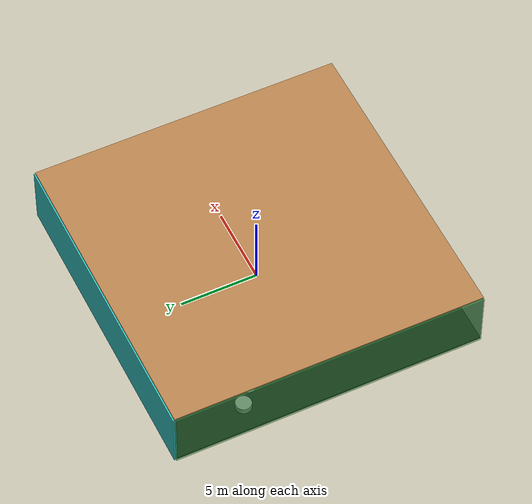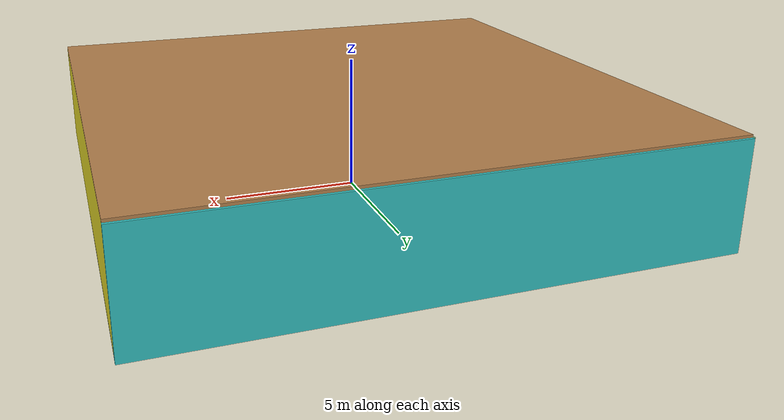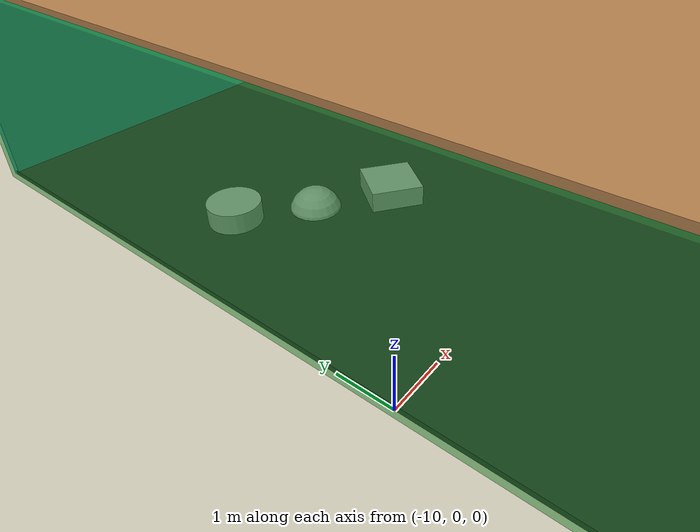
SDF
<sdf version="1.4">
 <world name="default">
  <physics type="ode">
   <max_step_size>0.001</max_step_size>
   <real_time_factor>1</real_time_factor>
   <real_time_update_rate>1000</real_time_update_rate>
   <gravity>0 0 -9.8</gravity>
  </physics>
  <scene><ambient>0.4 0.4 0.4 1</ambient><background>0.7 0.7 0.7 1</background><shadows>1</shadows></scene>
  <model name="Surrounding">
   <static>1</static>
   <link name="Ceiling">
    <collision name="Ceiling_Collision"><geometry><box><size>20 20 0.1</size></box></geometry></collision>
    <visual name="Ceiling_Visual">
     <geometry><box><size>20 20 0.1</size></box></geometry>
     <material>
      <script><uri>file://media/materials/scripts/gazebo.material</uri><name>Gazebo/Wood</name></script>
     </material>
    </visual>
    <pose>0 0 4.05 0 0 0</pose>
   </link>
   <link name="Wall_South">
    <collision name="Wall_South_Collision">
     <geometry><box><size>20 0 4</size></box></geometry>
     <pose>0 0 2 0 -0 0</pose>
    </collision>
    <visual name="Wall_South_Visual">
     <pose>0 0 2 0 -0 0</pose>
     <geometry><box><size>20 0 4</size></box></geometry>
     <material>
      <script><uri>file://media/materials/scripts/gazebo.material</uri><name>Gazebo/JointAnchor</name></script>
     </material>
    </visual>
    <velocity_decay><linear>0</linear><angular>0</angular></velocity_decay>
    <pose>0 -10 0 0 -0 0</pose>
   </link>
   <link name="Wall_East">
    <collision name="Wall_21_Collision">
     <geometry><box><size>20 0 4</size></box></geometry>
     <pose>0 0 2 0 -0 0</pose>
    </collision>
    <visual name="Wall_21_Visual">
     <pose>0 0 2 0 -0 0</pose>
     <geometry><box><size>20 0 4</size></box></geometry>
     <material>
      <script><uri>file://media/materials/scripts/gazebo.material</uri><name>Gazebo/YellowGlow</name></script>
     </material>
    </visual>
    <velocity_decay><linear>0</linear><angular>0</angular></velocity_decay>
    <pose>10 0 0 0 -0 1.5708</pose>
   </link>
   <link name="Wall_North">
    <collision name="Wall_22_Collision">
     <geometry><box><size>20 0.2 4</size></box></geometry>
     <pose>0 0 2 0 -0 0</pose>
    </collision>
    <visual name="Wall_22_Visual">
     <pose>0 0 2 0 -0 0</pose>
     <geometry><box><size>20 0.2 4</size></box></geometry>
     <material>
      <script><uri>file://media/materials/scripts/gazebo.material</uri><name>Gazebo/TurquoiseGlow</name></script>
     </material>
    </visual>
    <velocity_decay><linear>0</linear><angular>0</angular></velocity_decay>
    <pose>0 10 0 0 -0 0</pose>
   </link>
   <link name="Wall_West">
    <collision name="Wall_23_Collision">
     <geometry><box><size>20 0.2 4</size></box></geometry>
     <pose>0 0 2 0 -0 0</pose>
    </collision>
    <visual name="Wall_23_Visual">
     <pose>0 0 2 0 -0 0</pose>
     <geometry><box><size>20 0.2 4</size></box></geometry>
     <material>
      <script><uri>file://media/materials/scripts/gazebo.material</uri><name>Gazebo/GreenTransparent</name></script>
     </material>
    </visual>
    <velocity_decay><linear>0</linear><angular>0</angular></velocity_decay>
    <pose>-10 0 0 0 0 -1.5708</pose>
   </link>
   <link name="Ground_link">
    <collision name="collision">
     <pose>0 0 .05 0 -0 0</pose>
     <geometry><box><size>20 20 0.1</size></box></geometry>
    </collision>
    <visual name="visual">
     <pose>0 0 .05 0 -0 0</pose>
     <geometry><box><size>20 20 0.1</size></box></geometry>
     <material>
      <script><uri>file://media/materials/scripts/gazebo.material</uri><name>Gazebo/Black</name></script>
     </material>
    </visual>
   </link>
   <static>1</static>
  </model>
  <spherical_coordinates>
   <surface_model>EARTH_WGS84</surface_model>
   <latitude_deg>0</latitude_deg>
   <longitude_deg>0</longitude_deg>
   <elevation>0</elevation>
   <heading_deg>0</heading_deg>
  </spherical_coordinates>
  <light name="lightball_0" type="diffuse">
   <diffuse>0.8 0.8 0.8 1</diffuse>
   <specular>0.2 0.2 0.2 1</specular>
   <attenuation>
    <range>100</range>
    <constant>0.7</constant>
    <linear>0.01</linear>
    <quadratic>0.001</quadratic>
   </attenuation>
   <direction>-0.5 0.1 -0.9</direction>
   <pose>3.24457324378 -1.13665978008 2.30686947948 0 0 0</pose>
  </light>
  <light name="lightball_1" type="diffuse">
   <diffuse>0.8 0.8 0.8 1</diffuse>
   <specular>0.2 0.2 0.2 1</specular>
   <attenuation>
    <range>100</range>
    <constant>0.7</constant>
    <linear>0.01</linear>
    <quadratic>0.001</quadratic>
   </attenuation>
   <direction>-0.5 0.1 -0.9</direction>
   <pose>5.80251479326 7.54618881918 2.38536331655 0 0 0</pose>
  </light>
  <light name="lightball_2" type="diffuse">
   <diffuse>0.8 0.8 0.8 1</diffuse>
   <specular>0.2 0.2 0.2 1</specular>
   <attenuation>
    <range>100</range>
    <constant>0.7</constant>
    <linear>0.01</linear>
    <quadratic>0.001</quadratic>
   </attenuation>
   <direction>-0.5 0.1 -0.9</direction>
   <pose>0.445521697749 -5.22122441277 0.837369041535 0 0 0</pose>
  </light>
  <light name="lightball_3" type="diffuse">
   <diffuse>0.8 0.8 0.8 1</diffuse>
   <specular>0.2 0.2 0.2 1</specular>
   <attenuation>
    <range>100</range>
    <constant>0.7</constant>
    <linear>0.01</linear>
    <quadratic>0.001</quadratic>
   </attenuation>
   <direction>-0.5 0.1 -0.9</direction>
   <pose>8.15213987446 -1.38799854786 3.1283323865 0 0 0</pose>
  </light>
  <light name="lightball_4" type="diffuse">
   <diffuse>0.8 0.8 0.8 1</diffuse>
   <specular>0.2 0.2 0.2 1</specular>
   <attenuation>
    <range>100</range>
    <constant>0.7</constant>
    <linear>0.01</linear>
    <quadratic>0.001</quadratic>
   </attenuation>
   <direction>-0.5 0.1 -0.9</direction>
   <pose>-6.17326316293 -7.9123236444 3.66129749513 0 0 0</pose>
  </light>
  <light name="lightball_5" type="diffuse">
   <diffuse>0.8 0.8 0.8 1</diffuse>
   <specular>0.2 0.2 0.2 1</specular>
   <attenuation>
    <range>100</range>
    <constant>0.7</constant>
    <linear>0.01</linear>
    <quadratic>0.001</quadratic>
   </attenuation>
   <direction>-0.5 0.1 -0.9</direction>
   <pose>5.72772154768 5.84412953127 0.765595364263 0 0 0</pose>
  </light>
  <light name="lightball_6" type="diffuse">
   <diffuse>0.8 0.8 0.8 1</diffuse>
   <specular>0.2 0.2 0.2 1</specular>
   <attenuation>
    <range>100</range>
    <constant>0.7</constant>
    <linear>0.01</linear>
    <quadratic>0.001</quadratic>
   </attenuation>
   <direction>-0.5 0.1 -0.9</direction>
   <pose>4.65460837554 -5.44304790914 2.30961370672 0 0 0</pose>
  </light>
  <light name="lightball_7" type="diffuse">
   <diffuse>0.8 0.8 0.8 1</diffuse>
   <specular>0.2 0.2 0.2 1</specular>
   <attenuation>
    <range>100</range>
    <constant>0.7</constant>
    <linear>0.01</linear>
    <quadratic>0.001</quadratic>
   </attenuation>
   <direction>-0.5 0.1 -0.9</direction>
   <pose>-6.42721162191 -8.99572944302 2.4779774091 0 0 0</pose>
  </light>
  <light name="lightball_8" type="diffuse">
   <diffuse>0.8 0.8 0.8 1</diffuse>
   <specular>0.2 0.2 0.2 1</specular>
   <attenuation>
    <range>100</range>
    <constant>0.7</constant>
    <linear>0.01</linear>
    <quadratic>0.001</quadratic>
   </attenuation>
   <direction>-0.5 0.1 -0.9</direction>
   <pose>6.42705298682 -0.551744087997 2.89100648737 0 0 0</pose>
  </light>
  <light name="lightball_9" type="diffuse">
   <diffuse>0.8 0.8 0.8 1</diffuse>
   <specular>0.2 0.2 0.2 1</specular>
   <attenuation>
    <range>100</range>
    <constant>0.7</constant>
    <linear>0.01</linear>
    <quadratic>0.001</quadratic>
   </attenuation>
   <direction>-0.5 0.1 -0.9</direction>
   <pose>2.39605796177 4.82485745331 2.41377413329 0 0 0</pose>
  </light>
  <include>
   <uri>model://textured_shapes</uri>
   <pose>-7.20284095655 3.98244574047 0 0 0 0.931121093122</pose>
  </include>
  <include><uri>model://table</uri><pose>-1.59438169176 0.62295820103 0 0 0 3.01767905823</pose></include>
  <include><uri>model://table</uri><pose>4.3201069434 -7.01849734799 0 0 0 2.33731481857</pose></include>
  <include>
   <uri>model://construction_cone</uri>
   <pose>4.16747185327 7.35847956866 0 0 0 0.943535747806</pose>
  </include>
  <include><uri>model://cabinet</uri><pose>8.39451753387 2.32026580246 0 0 0 0.290367235925</pose></include>
  <include><uri>model://cabinet</uri><pose>8.15110359461 7.43934342648 0 0 0 0.218716064095</pose></include>
 </world>
</sdf>

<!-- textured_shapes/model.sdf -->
<sdf version="1.6">
  <model name="textured_shapes">
    <pose>0 0 0.5 0 0 0</pose>
    <link name="box">
      <pose>0 -1.5 0 0 0 0</pose>
      <collision name="collision">
        <geometry>
          <box>
            <size>1 1 1</size>
          </box>
        </geometry>
      </collision>
      <visual name="visual">
        <geometry>
          <box>
            <size>1 1 1</size>
          </box>
        </geometry>
        <material>
          <script>
            <uri>model://../model_source/models/textured_shapes/materials/scripts</uri>
            <uri>model://../model_source/models/textured_shapes/materials/textures</uri>
            <name>TexturedShape/Squares</name>
          </script>
        </material>
      </visual>
    </link>
    <link name="sphere">
      <collision name="collision">
        <geometry>
          <sphere>
            <radius>0.5</radius>
          </sphere>
        </geometry>
      </collision>
      <visual name="visual">
        <geometry>
          <sphere>
            <radius>0.5</radius>
          </sphere>
        </geometry>
        <material>
          <script>
            <uri>model://../model_source/models/textured_shapes/materials/scripts</uri>
            <uri>model://../model_source/models/textured_shapes/materials/textures</uri>
            <name>TexturedShape/Squares</name>
          </script>
        </material>
      </visual>
    </link>
    <link name="cylinder">
      <pose>0 1.5 0 0 0 0</pose>
      <collision name="collision">
        <geometry>
          <cylinder>
            <radius>0.5</radius>
            <length>1</length>
          </cylinder>
        </geometry>
      </collision>
      <visual name="visual">
        <geometry>
          <cylinder>
            <radius>0.5</radius>
            <length>1</length>
          </cylinder>
        </geometry>
        <material>
          <script>
            <uri>model://../model_source/models/textured_shapes/materials/scripts</uri>
            <uri>model://../model_source/models/textured_shapes/materials/textures</uri>
            <name>TexturedShape/Squares</name>
          </script>
        </material>
      </visual>
    </link>
  </model>
</sdf>

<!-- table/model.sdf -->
<sdf version="1.5">
  <model name="table">
    <static>true</static>
    <link name="link">
      <collision name="surface">
        <pose>0 0 1.0 0 0 0</pose>
        <geometry>
          <box>
            <size>1.5 0.8 0.03</size>
          </box>
        </geometry>
        <surface>
          <friction>
            <ode>
              <mu>0.6</mu>
              <mu2>0.6</mu2>
            </ode>
          </friction>
        </surface>
      </collision>
      <visual name="visual1">
        <pose>0 0 1.0 0 0 0</pose>
        <geometry>
          <box>
            <size>1.5 0.8 0.03</size>
          </box>
        </geometry>
        <material>
          <script>
            <uri>model://media/materials/scripts/gazebo.material</uri>
            <name>Gazebo/Wood</name>
          </script>
        </material>
      </visual>
      <collision name="front_left_leg">
        <pose>0.68 0.38 0.5 0 0 0</pose>
        <geometry>
          <cylinder>
            <radius>0.02</radius>
            <length>1.0</length>
          </cylinder>
        </geometry>
      </collision>
      <visual name="front_left_leg">
        <pose>0.68 0.38 0.5 0 0 0</pose>
        <geometry>
          <cylinder>
            <radius>0.02</radius>
            <length>1.0</length>
          </cylinder>
        </geometry>
        <material>
          <script>
            <uri>model://media/materials/scripts/gazebo.material</uri>
            <name>Gazebo/Grey</name>
          </script>
        </material>
      </visual>
      <collision name="front_right_leg">
        <pose>0.68 -0.38 0.5 0 0 0</pose>
        <geometry>
          <cylinder>
            <radius>0.02</radius>
            <length>1.0</length>
          </cylinder>
        </geometry>
      </collision>
      <visual name="front_right_leg">
        <pose>0.68 -0.38 0.5 0 0 0</pose>
        <geometry>
          <cylinder>
            <radius>0.02</radius>
            <length>1.0</length>
          </cylinder>
        </geometry>
        <material>
          <script>
            <uri>model://media/materials/scripts/gazebo.material</uri>
            <name>Gazebo/Grey</name>
          </script>
        </material>
      </visual>
      <collision name="back_right_leg">
        <pose>-0.68 -0.38 0.5 0 0 0</pose>
        <geometry>
          <cylinder>
            <radius>0.02</radius>
            <length>1.0</length>
          </cylinder>
        </geometry>
      </collision>
      <visual name="back_right_leg">
        <pose>-0.68 -0.38 0.5 0 0 0</pose>
        <geometry>
          <cylinder>
            <radius>0.02</radius>
            <length>1.0</length>
          </cylinder>
        </geometry>
        <material>
          <script>
            <uri>model://media/materials/scripts/gazebo.material</uri>
            <name>Gazebo/Grey</name>
          </script>
        </material>
      </visual>
      <collision name="back_left_leg">
        <pose>-0.68 0.38 0.5 0 0 0</pose>
        <geometry>
          <cylinder>
            <radius>0.02</radius>
            <length>1.0</length>
          </cylinder>
        </geometry>
      </collision>
      <visual name="back_left_leg">
        <pose>-0.68 0.38 0.5 0 0 0</pose>
        <geometry>
          <cylinder>
            <radius>0.02</radius>
            <length>1.0</length>
          </cylinder>
        </geometry>
        <material>
          <script>
            <uri>model://media/materials/scripts/gazebo.material</uri>
            <name>Gazebo/Grey</name>
          </script>
        </material>
      </visual>
    </link>
  </model>
</sdf>

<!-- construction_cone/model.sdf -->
<sdf version="1.5">
  <model name="Construction Cone">
    <link name="link">
      <collision name="collision">
        <geometry>
          <mesh>
            <scale>10 10 10</scale>
            <uri>file://isr-testbed/construction_cone/meshes/construction_cone.dae</uri>
          </mesh>
        </geometry>
      </collision>
      <visual name="visual">
        <geometry>
          <mesh>
            <scale>10 10 10</scale>
            <uri>file://isr-testbed/construction_cone/meshes/construction_cone.dae</uri>
          </mesh>
        </geometry>
      </visual>
    </link>
  </model>
</sdf>

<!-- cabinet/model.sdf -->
<sdf version="1.5">
  <model name="cabinet">
    <static>true</static>
    <link name="cabinet_bottom_plate">
      <inertial>
        <pose>0 0 -1 0 0 0</pose>
        <inertia>
          <ixx>2.050000</ixx>
          <ixy>0</ixy>
          <ixz>0</ixz>
          <iyy>2.050000</iyy>
          <iyz>0</iyz>
          <izz>2.050000</izz>
        </inertia>
        <mass>25.000000</mass>
      </inertial>
      <collision name="cabinet_bottom_plate_geom">
        <pose>0 0 0.010000 0 0 0</pose>
        <geometry>
          <box>
            <size>0.450000 0.450000 0.020000</size>
          </box>
        </geometry>
      </collision>
      <visual name="cabinet_bottom_plate_geom_visual">
        <pose>0 0 0.010000 0 0 0</pose>
        <geometry>
          <box>
            <size>0.450000 0.450000 0.020000</size>
          </box>
        </geometry>
        <material>
          <script>
            <uri>model://media/materials/scripts/gazebo.material</uri>
            <name>Gazebo/Wood</name>
          </script>
        </material>
      </visual>
      <collision name="cabinet_bottom_plate_geom_cabinet_back_plate">
        <pose>0.235000 0 0.510000 0 0 0</pose>
        <geometry>
          <box>
            <size>0.020000 0.450000 1.020000</size>
          </box>
        </geometry>
      </collision>
      <visual name="cabinet_bottom_plate_geom_cabinet_back_plate_visual">
        <pose>0.235000 0 0.510000 0 0 0</pose>
        <geometry>
          <box>
            <size>0.020000 0.450000 1.020000</size>
          </box>
        </geometry>
        <material>
          <script>
            <uri>model://media/materials/scripts/gazebo.material</uri>
            <name>Gazebo/Wood</name>
          </script>
        </material>
      </visual>
      <collision name="cabinet_bottom_plate_geom_cabinet_left_plate">
        <pose>0 0.235000 0.510000 0 0 0</pose>
        <geometry>
          <box>
            <size>0.450000 0.020000 1.020000</size>
          </box>
        </geometry>
      </collision>
      <visual name="cabinet_bottom_plate_geom_cabinet_left_plate_visual">
        <pose>0 0.235000 0.510000 0 0 0</pose>
        <geometry>
          <box>
            <size>0.450000 0.020000 1.020000</size>
          </box>
        </geometry>
        <material>
          <script>
            <uri>model://media/materials/scripts/gazebo.material</uri>
            <name>Gazebo/Wood</name>
          </script>
        </material>
      </visual>
      <collision name="cabinet_bottom_plate_geom_cabinet_middle_plate">
        <pose>0 0 0.510000 0 0 0</pose>
        <geometry>
          <box>
            <size>0.450000 0.450000 0.020000</size>
          </box>
        </geometry>
      </collision>
      <visual name="cabinet_bottom_plate_geom_cabinet_middle_plate_visual">
        <pose>0 0 0.510000 0 0 0</pose>
        <geometry>
          <box>
            <size>0.450000 0.450000 0.020000</size>
          </box>
        </geometry>
        <material>
          <script>
            <uri>model://media/materials/scripts/gazebo.material</uri>
            <name>Gazebo/Wood</name>
          </script>
        </material>
      </visual>
      <collision name="cabinet_bottom_plate_geom_cabinet_right_plate">
        <pose>0 -0.235000 0.510000 0 0 0</pose>
        <geometry>
          <box>
            <size>0.450000 0.020000 1.020000</size>
          </box>
        </geometry>
      </collision>
      <visual name="cabinet_bottom_plate_geom_cabinet_right_plate_visual">
        <pose>0 -0.235000 0.510000 0 0 0</pose>
        <geometry>
          <box>
            <size>0.450000 0.020000 1.020000</size>
          </box>
        </geometry>
        <material>
          <script>
            <uri>model://media/materials/scripts/gazebo.material</uri>
            <name>Gazebo/Wood</name>
          </script>
        </material>
      </visual>
      <collision name="cabinet_bottom_plate_geom_cabinet_top_plate">
        <pose>0 0 1.010000 0 0 0</pose>
        <geometry>
          <box>
            <size>0.450000 0.450000 0.020000</size>
          </box>
        </geometry>
      </collision>
      <visual name="cabinet_bottom_plate_geom_cabinet_top_plate_visual">
        <pose>0 0 1.010000 0 0 0</pose>
        <geometry>
          <box>
            <size>0.450000 0.450000 0.020000</size>
          </box>
        </geometry>
        <material>
          <script>
            <uri>model://media/materials/scripts/gazebo.material</uri>
            <name>Gazebo/Wood</name>
          </script>
        </material>
      </visual>
    </link>
  </model>
</sdf>
